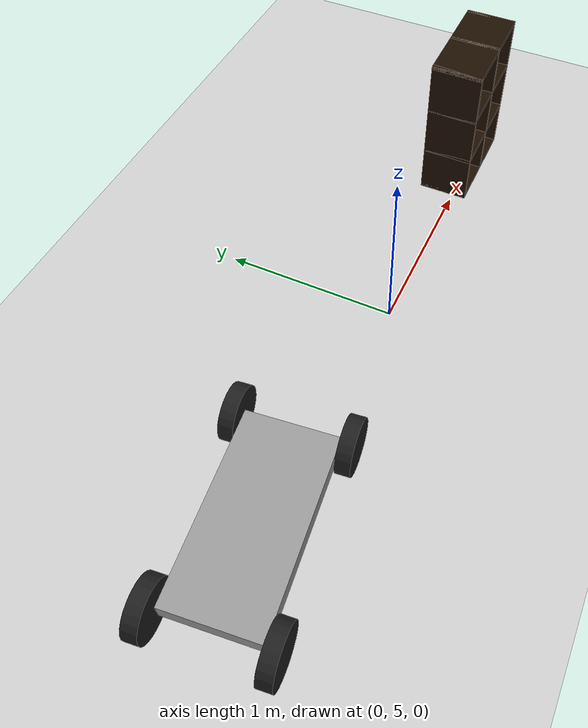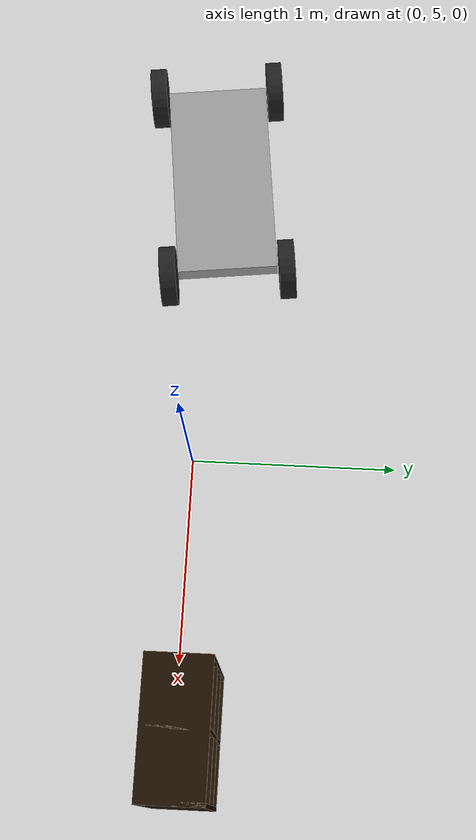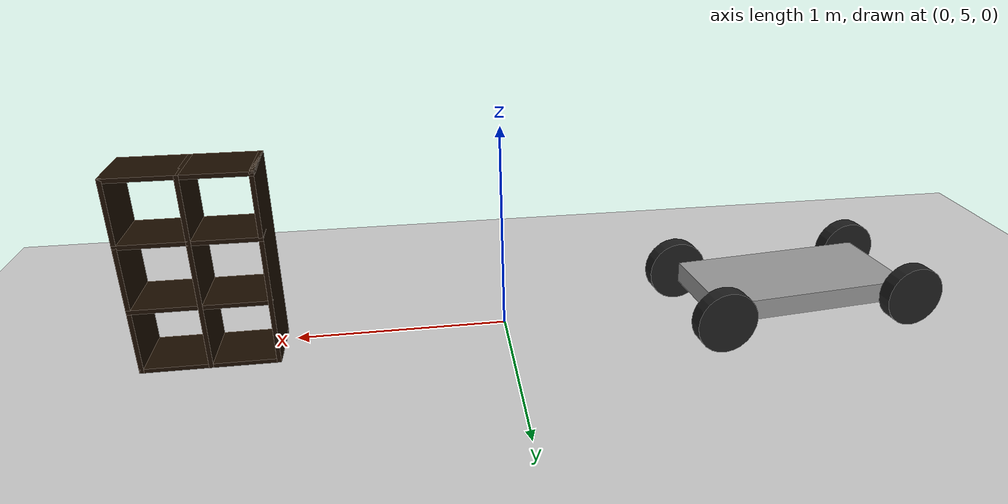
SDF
<sdf version="1.7">
 <world name="default">
  <model name="ground_plane">
   <static>1</static>
   <link name="link">
    <collision name="collision">
     <geometry><plane><normal>0 0 1</normal><size>100 100</size></plane></geometry>
     <surface>
      <contact><collide_bitmask>65535</collide_bitmask></contact>
      <friction><ode><mu>100</mu><mu2>50</mu2></ode></friction>
     </surface>
    </collision>
    <visual name="visual">
     <cast_shadows>0</cast_shadows>
     <geometry><plane><normal>0 0 1</normal><size>100 100</size></plane></geometry>
     <material>
      <script><uri>file://media/materials/scripts/gazebo.material</uri><name>Gazebo/Grey</name></script>
     </material>
    </visual>
   </link>
  </model>
  <model name="cart_rigid_suspension">
   <link name="chassis">
    <pose>0 0 0.15 0 -0 0</pose>
    <inertial>
     <pose>0.1 0 0 0 -0 0</pose>
     <mass>10</mass>
     <inertia>
      <ixx>0.216667</ixx>
      <iyy>0.841667</iyy>
      <izz>1.04167</izz>
      <ixy>0</ixy>
      <ixz>0</ixz>
      <iyz>0</iyz>
     </inertia>
    </inertial>
    <collision name="collision"><geometry><box><size>1 0.5 0.1</size></box></geometry></collision>
    <visual name="visual">
     <geometry><box><size>1 0.5 0.1</size></box></geometry>
     <material>
      <script><uri>file://media/materials/scripts/gazebo.material</uri><name>Gazebo/Grey</name></script>
     </material>
    </visual>
   </link>
   <link name="wheel_front_left">
    <pose>0.5 0.298 0.15 -1.5708 0 0</pose>
    <inertial>
     <mass>0.5</mass>
     <inertia>
      <ixx>0.00307917</ixx>
      <iyy>0.00307917</iyy>
      <izz>0.005625</izz>
      <ixy>0</ixy>
      <ixz>0</ixz>
      <iyz>0</iyz>
     </inertia>
    </inertial>
    <collision name="collision">
     <geometry><cylinder><radius>0.15</radius><length>0.08</length></cylinder></geometry>
    </collision>
    <visual name="visual">
     <geometry><cylinder><radius>0.15</radius><length>0.08</length></cylinder></geometry>
     <material>
      <script><uri>file://media/materials/scripts/gazebo.material</uri><name>Gazebo/Black</name></script>
     </material>
    </visual>
   </link>
   <joint name="wheel_front_left_spin" type="revolute">
    <parent>chassis</parent>
    <child>wheel_front_left</child>
    <axis>
     <xyz>0 0 1</xyz>
     <limit><lower>-1e+16</lower><upper>1e+16</upper></limit>
     <dynamics><spring_reference>0</spring_reference><spring_stiffness>0</spring_stiffness></dynamics>
    </axis>
   </joint>
   <link name="wheel_front_right">
    <pose>0.5 -0.298 0.15 -1.5708 0 0</pose>
    <inertial>
     <mass>0.5</mass>
     <inertia>
      <ixx>0.00307917</ixx>
      <iyy>0.00307917</iyy>
      <izz>0.005625</izz>
      <ixy>0</ixy>
      <ixz>0</ixz>
      <iyz>0</iyz>
     </inertia>
    </inertial>
    <collision name="collision">
     <geometry><cylinder><radius>0.15</radius><length>0.08</length></cylinder></geometry>
    </collision>
    <visual name="visual">
     <geometry><cylinder><radius>0.15</radius><length>0.08</length></cylinder></geometry>
     <material>
      <script><uri>file://media/materials/scripts/gazebo.material</uri><name>Gazebo/Black</name></script>
     </material>
    </visual>
   </link>
   <joint name="wheel_front_right_spin" type="revolute">
    <parent>chassis</parent>
    <child>wheel_front_right</child>
    <axis>
     <xyz>0 0 1</xyz>
     <limit><lower>-1e+16</lower><upper>1e+16</upper></limit>
     <dynamics><spring_reference>0</spring_reference><spring_stiffness>0</spring_stiffness></dynamics>
    </axis>
   </joint>
   <link name="wheel_rear_left">
    <pose>-0.5 0.298 0.15 -1.5708 0 0</pose>
    <inertial>
     <mass>0.5</mass>
     <inertia>
      <ixx>0.00307917</ixx>
      <iyy>0.00307917</iyy>
      <izz>0.005625</izz>
      <ixy>0</ixy>
      <ixz>0</ixz>
      <iyz>0</iyz>
     </inertia>
    </inertial>
    <collision name="collision">
     <geometry><cylinder><radius>0.15</radius><length>0.08</length></cylinder></geometry>
    </collision>
    <visual name="visual">
     <geometry><cylinder><radius>0.15</radius><length>0.08</length></cylinder></geometry>
     <material>
      <script><uri>file://media/materials/scripts/gazebo.material</uri><name>Gazebo/Black</name></script>
     </material>
    </visual>
   </link>
   <joint name="wheel_rear_left_spin" type="revolute">
    <parent>chassis</parent>
    <child>wheel_rear_left</child>
    <axis>
     <xyz>0 0 1</xyz>
     <limit><lower>-1e+16</lower><upper>1e+16</upper></limit>
     <dynamics><spring_reference>0</spring_reference><spring_stiffness>0</spring_stiffness></dynamics>
    </axis>
   </joint>
   <link name="wheel_rear_right">
    <pose>-0.5 -0.298 0.15 -1.5708 0 0</pose>
    <inertial>
     <mass>0.5</mass>
     <inertia>
      <ixx>0.00307917</ixx>
      <iyy>0.00307917</iyy>
      <izz>0.005625</izz>
      <ixy>0</ixy>
      <ixz>0</ixz>
      <iyz>0</iyz>
     </inertia>
    </inertial>
    <collision name="collision">
     <geometry><cylinder><radius>0.15</radius><length>0.08</length></cylinder></geometry>
    </collision>
    <visual name="visual">
     <geometry><cylinder><radius>0.15</radius><length>0.08</length></cylinder></geometry>
     <material>
      <script><uri>file://media/materials/scripts/gazebo.material</uri><name>Gazebo/Black</name></script>
     </material>
    </visual>
   </link>
   <joint name="wheel_rear_right_spin" type="revolute">
    <parent>chassis</parent>
    <child>wheel_rear_right</child>
    <axis>
     <xyz>0 0 1</xyz>
     <limit><lower>-1e+16</lower><upper>1e+16</upper></limit>
     <dynamics><spring_reference>0</spring_reference><spring_stiffness>0</spring_stiffness></dynamics>
    </axis>
   </joint>
   <pose>-1.44678 5.06666 -7e-06 0 -1.4e-05 0.112534</pose>
  </model>
  <model name="6_Cube_StorageE">
   <link name="Wall_0">
    <pose>0 0 0.01 0 -0 0</pose>
    <inertial>
     <mass>1.6201</mass>
     <inertia><ixx>0.0119</ixx><iyy>0.0631</iyy><izz>0.0513</izz><ixy>0</ixy><ixz>0</ixz><iyz>0</iyz></inertia>
    </inertial>
    <collision name="Wall_0_Collision"><geometry><box><size>0.616 0.296 0.02</size></box></geometry></collision>
    <visual name="Wall_0_Visual">
     <geometry><box><size>0.616 0.296 0.02</size></box></geometry>
     <material>
      <script><uri>file://media/materials/scripts/gazebo.material</uri><name>Gazebo/Grey</name></script>
      <ambient>0.105882 0.0509804 0 1</ambient>
     </material>
    </visual>
   </link>
   <joint name="0_2" type="fixed">
    <pose>-0.308 0 0 0 -0 0</pose>
    <parent>Wall_2</parent>
    <child>Wall_0</child>
    <axis><xyz>1 0 0</xyz><limit><lower>-1e+16</lower><upper>1e+16</upper></limit></axis>
   </joint>
   <joint name="0_12" type="fixed">
    <parent>Wall_12</parent>
    <child>Wall_0</child>
    <axis><xyz>0 0 1</xyz><limit><lower>-1e+16</lower><upper>1e+16</upper></limit></axis>
   </joint>
   <joint name="0_4" type="fixed">
    <pose>0.308 0 0 0 -0 0</pose>
    <parent>Wall_4</parent>
    <child>Wall_0</child>
    <axis><xyz>1 0 0</xyz><limit><lower>-1e+16</lower><upper>1e+16</upper></limit></axis>
   </joint>
   <link name="Wall_10">
    <pose>0 0 0.61 0 -0 0</pose>
    <inertial>
     <mass>1.6201</mass>
     <inertia><ixx>0.0119</ixx><iyy>0.0631</iyy><izz>0.0513</izz><ixy>0</ixy><ixz>0</ixz><iyz>0</iyz></inertia>
    </inertial>
    <collision name="Wall_10_Collision"><geometry><box><size>0.616 0.296 0.02</size></box></geometry></collision>
    <visual name="Wall_10_Visual">
     <geometry><box><size>0.616 0.296 0.02</size></box></geometry>
     <material>
      <script><uri>file://media/materials/scripts/gazebo.material</uri><name>Gazebo/Grey</name></script>
      <ambient>0.105882 0.0509804 0 1</ambient>
     </material>
    </visual>
   </link>
   <joint name="10_2" type="fixed">
    <pose>-0.308 0 0 0 -0 0</pose>
    <parent>Wall_2</parent>
    <child>Wall_10</child>
    <axis><xyz>1 0 0</xyz><limit><lower>-1e+16</lower><upper>1e+16</upper></limit></axis>
   </joint>
   <joint name="10_12" type="fixed">
    <parent>Wall_12</parent>
    <child>Wall_10</child>
    <axis><xyz>0 0 1</xyz><limit><lower>-1e+16</lower><upper>1e+16</upper></limit></axis>
   </joint>
   <joint name="10_4" type="fixed">
    <pose>0.308 0 0 0 -0 0</pose>
    <parent>Wall_4</parent>
    <child>Wall_10</child>
    <axis><xyz>1 0 0</xyz><limit><lower>-1e+16</lower><upper>1e+16</upper></limit></axis>
   </joint>
   <link name="Wall_12">
    <pose>0 0 0.4575 0 -0 0</pose>
    <inertial>
     <mass>2.4065</mass>
     <inertia><ixx>0.0177</ixx><iyy>0.1855</iyy><izz>0.168</izz><ixy>0</ixy><ixz>0</ixz><iyz>0</iyz></inertia>
    </inertial>
    <collision name="Wall_12_Collision"><geometry><box><size>0.02 0.296 0.915</size></box></geometry></collision>
    <visual name="Wall_12_Visual">
     <geometry><box><size>0.02 0.296 0.915</size></box></geometry>
     <material>
      <script><uri>file://media/materials/scripts/gazebo.material</uri><name>Gazebo/Grey</name></script>
      <ambient>0.105882 0.0509804 0 1</ambient>
     </material>
    </visual>
   </link>
   <link name="Wall_2">
    <pose>-0.298 0 0.4575 0 -0 0</pose>
    <inertial>
     <mass>2.4065</mass>
     <inertia><ixx>0.0177</ixx><iyy>0.1855</iyy><izz>0.168</izz><ixy>0</ixy><ixz>0</ixz><iyz>0</iyz></inertia>
    </inertial>
    <collision name="Wall_2_Collision"><geometry><box><size>0.02 0.296 0.915</size></box></geometry></collision>
    <visual name="Wall_2_Visual">
     <geometry><box><size>0.02 0.296 0.915</size></box></geometry>
     <material>
      <script><uri>file://media/materials/scripts/gazebo.material</uri><name>Gazebo/Grey</name></script>
      <ambient>0.105882 0.0509804 0 1</ambient>
     </material>
    </visual>
   </link>
   <link name="Wall_4">
    <pose>0.298 0 0.4575 0 -0 0</pose>
    <inertial>
     <mass>2.4065</mass>
     <inertia><ixx>0.0177</ixx><iyy>0.1855</iyy><izz>0.168</izz><ixy>0</ixy><ixz>0</ixz><iyz>0</iyz></inertia>
    </inertial>
    <collision name="Wall_4_Collision"><geometry><box><size>0.02 0.296 0.915</size></box></geometry></collision>
    <visual name="Wall_4_Visual">
     <geometry><box><size>0.02 0.296 0.915</size></box></geometry>
     <material>
      <script><uri>file://media/materials/scripts/gazebo.material</uri><name>Gazebo/Grey</name></script>
      <ambient>0.105882 0.0509804 0 1</ambient>
     </material>
    </visual>
   </link>
   <link name="Wall_6">
    <pose>0 0 0.905 0 -0 0</pose>
    <inertial>
     <mass>1.6201</mass>
     <inertia><ixx>0.0119</ixx><iyy>0.0631</iyy><izz>0.0513</izz><ixy>0</ixy><ixz>0</ixz><iyz>0</iyz></inertia>
    </inertial>
    <collision name="Wall_6_Collision"><geometry><box><size>0.616 0.296 0.02</size></box></geometry></collision>
    <visual name="Wall_6_Visual">
     <geometry><box><size>0.616 0.296 0.02</size></box></geometry>
     <material>
      <script><uri>file://media/materials/scripts/gazebo.material</uri><name>Gazebo/Grey</name></script>
      <ambient>0.105882 0.0509804 0 1</ambient>
     </material>
    </visual>
   </link>
   <joint name="6_2" type="fixed">
    <pose>-0.308 0 0 0 -0 0</pose>
    <parent>Wall_2</parent>
    <child>Wall_6</child>
    <axis><xyz>2 0 0</xyz><limit><lower>-1e+16</lower><upper>1e+16</upper></limit></axis>
   </joint>
   <joint name="6_12" type="fixed">
    <parent>Wall_12</parent>
    <child>Wall_6</child>
    <axis><xyz>0 0 1</xyz><limit><lower>-1e+16</lower><upper>1e+16</upper></limit></axis>
   </joint>
   <joint name="6_4" type="fixed">
    <pose>0.308 0 0 0 -0 0</pose>
    <parent>Wall_4</parent>
    <child>Wall_6</child>
    <axis><xyz>1 0 0</xyz><limit><lower>-1e+16</lower><upper>1e+16</upper></limit></axis>
   </joint>
   <link name="Wall_8">
    <pose>0 0 0.305 0 -0 0</pose>
    <inertial>
     <mass>1.6201</mass>
     <inertia><ixx>0.0119</ixx><iyy>0.0631</iyy><izz>0.0513</izz><ixy>0</ixy><ixz>0</ixz><iyz>0</iyz></inertia>
    </inertial>
    <collision name="Wall_8_Collision"><geometry><box><size>0.616 0.296 0.02</size></box></geometry></collision>
    <visual name="Wall_8_Visual">
     <geometry><box><size>0.616 0.296 0.02</size></box></geometry>
     <material>
      <script><uri>file://media/materials/scripts/gazebo.material</uri><name>Gazebo/Grey</name></script>
      <ambient>0.105882 0.0509804 0 1</ambient>
     </material>
    </visual>
   </link>
   <joint name="8_2" type="fixed">
    <pose>-0.308 0 0 0 -0 0</pose>
    <parent>Wall_2</parent>
    <child>Wall_8</child>
    <axis><xyz>1 0 0</xyz><limit><lower>-1e+16</lower><upper>1e+16</upper></limit></axis>
   </joint>
   <joint name="8_12" type="fixed">
    <parent>Wall_12</parent>
    <child>Wall_8</child>
    <axis><xyz>0 0 1</xyz><limit><lower>-1e+16</lower><upper>1e+16</upper></limit></axis>
   </joint>
   <joint name="8_4" type="fixed">
    <pose>0.308 0 0 0 -0 0</pose>
    <parent>Wall_4</parent>
    <child>Wall_8</child>
    <axis><xyz>1 0 0</xyz><limit><lower>-1e+16</lower><upper>1e+16</upper></limit></axis>
   </joint>
   <static>1</static>
   <pose>1.35905 5.06956 0 0 -0 0</pose>
  </model>
 </world>
</sdf>
